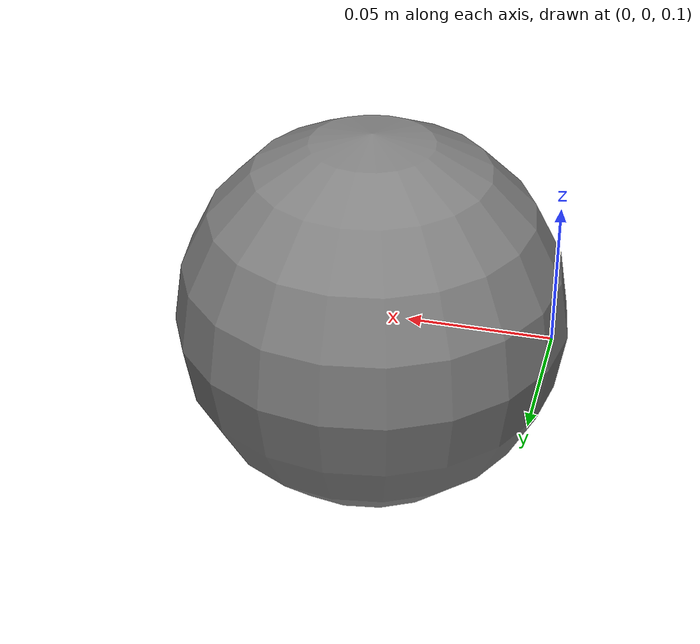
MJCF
<mujoco>
  <option gravity="0 0 -9.81" timestep="0.001"/>
  <worldbody>
    <body name="arm" pos="0.05 0.05 0.285">
      <joint name="j" type="hinge" axis="0 1 0"/>
      <geom name="fist" type="sphere" pos="0 0 -0.15" size="0.06" mass="0.5"/>
    </body>
  </worldbody>
  <actuator><motor joint="j" gear="1"/></actuator>
</mujoco>
